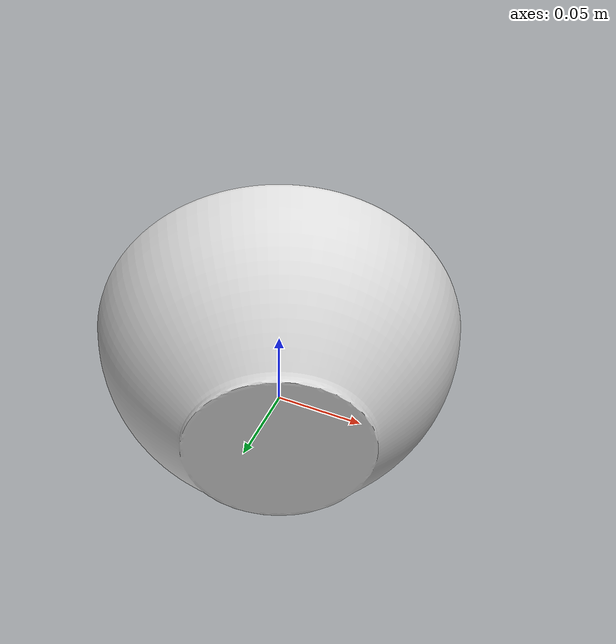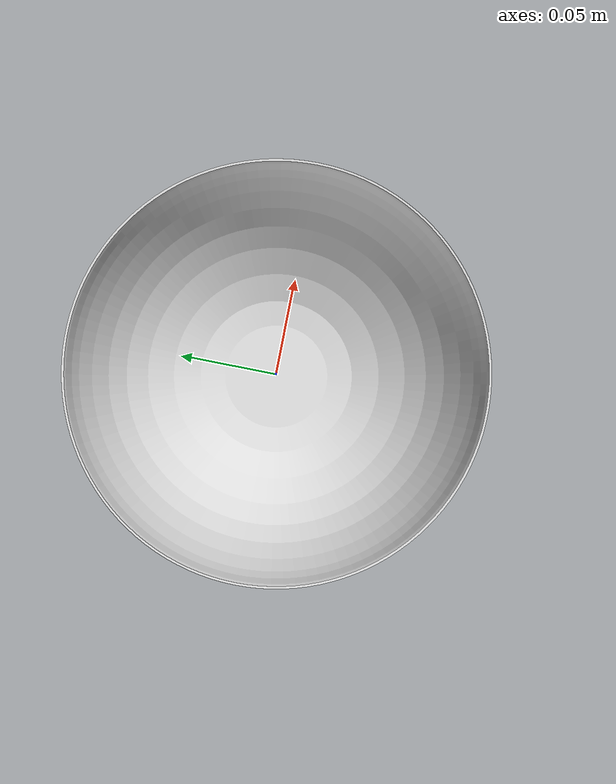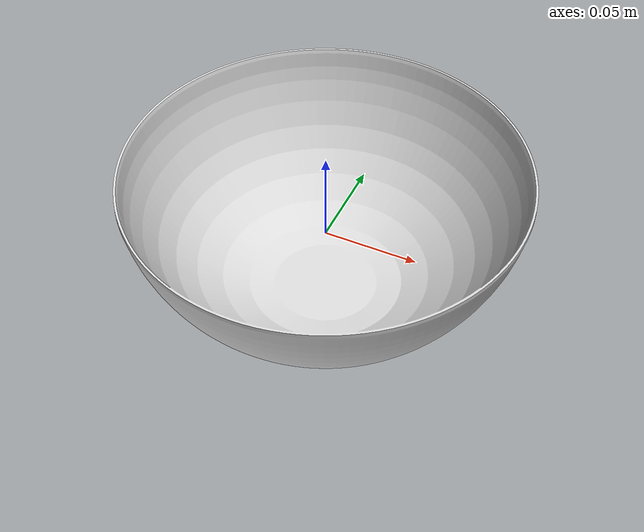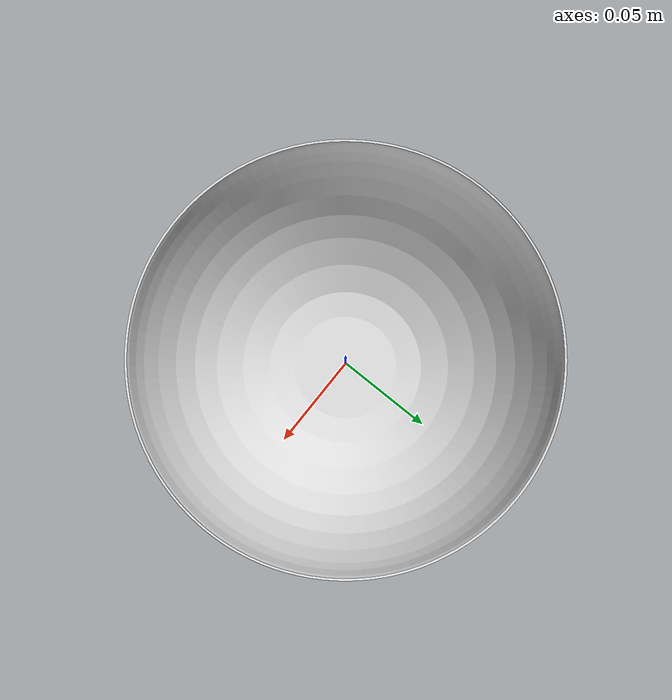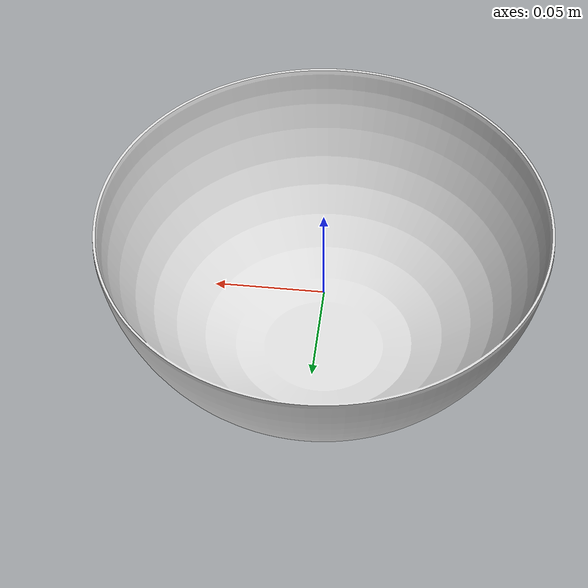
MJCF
<?xml version="1.0" ?>
<mujoco model="medium_bowl">
	<compiler meshdir="medium_bowl/meshes" texturedir="medium_bowl/textures" angle="radian" autolimits="true" balanceinertia="true" boundmass="0.000001" boundinertia="0.000001"/>
	<default>
		<default class="visual">
			<geom contype="0" conaffinity="0"/>
		</default>
		<default class="collision">
			<geom rgba="1.0 0.0 0.0 0.0"/>
		</default>
	</default>
	<asset>
		<mesh name="BowlMediumSize" file="stl/BowlMediumSize.stl" scale="1.0 1.0 1.0"/>
		<mesh name="BowlMediumSize_001" file="stl/BowlMediumSize_001.stl" scale="1.0 1.0 1.0"/>
		<mesh name="BowlMediumSize_002" file="stl/BowlMediumSize_002.stl" scale="1.0 1.0 1.0"/>
		<mesh name="BowlMediumSize_003" file="stl/BowlMediumSize_003.stl" scale="1.0 1.0 1.0"/>
		<mesh name="BowlMediumSize_004" file="stl/BowlMediumSize_004.stl" scale="1.0 1.0 1.0"/>
		<mesh name="BowlMediumSize_005" file="stl/BowlMediumSize_005.stl" scale="1.0 1.0 1.0"/>
		<mesh name="BowlMediumSize_006" file="stl/BowlMediumSize_006.stl" scale="1.0 1.0 1.0"/>
		<mesh name="BowlMediumSize_007" file="stl/BowlMediumSize_007.stl" scale="1.0 1.0 1.0"/>
		<mesh name="BowlMediumSize_008" file="stl/BowlMediumSize_008.stl" scale="1.0 1.0 1.0"/>
		<mesh name="BowlMediumSize_009" file="stl/BowlMediumSize_009.stl" scale="1.0 1.0 1.0"/>
		<mesh name="BowlMediumSize_010" file="stl/BowlMediumSize_010.stl" scale="1.0 1.0 1.0"/>
		<mesh name="BowlMediumSize_011" file="stl/BowlMediumSize_011.stl" scale="1.0 1.0 1.0"/>
		<mesh name="BowlMediumSize_012" file="stl/BowlMediumSize_012.stl" scale="1.0 1.0 1.0"/>
		<mesh name="BowlMediumSize_013" file="stl/BowlMediumSize_013.stl" scale="1.0 1.0 1.0"/>
		<mesh name="BowlMediumSize_014" file="stl/BowlMediumSize_014.stl" scale="1.0 1.0 1.0"/>
		<mesh name="BowlMediumSize_015" file="stl/BowlMediumSize_015.stl" scale="1.0 1.0 1.0"/>
		<mesh name="BowlMediumSize_016" file="stl/BowlMediumSize_016.stl" scale="1.0 1.0 1.0"/>
		<mesh name="BowlMediumSize_017" file="stl/BowlMediumSize_017.stl" scale="1.0 1.0 1.0"/>
		<mesh name="BowlMediumSize_018" file="stl/BowlMediumSize_018.stl" scale="1.0 1.0 1.0"/>
		<mesh name="BowlMediumSize_019" file="stl/BowlMediumSize_019.stl" scale="1.0 1.0 1.0"/>
		<mesh name="BowlMediumSize_020" file="stl/BowlMediumSize_020.stl" scale="1.0 1.0 1.0"/>
		<mesh name="BowlMediumSize_021" file="stl/BowlMediumSize_021.stl" scale="1.0 1.0 1.0"/>
		<mesh name="BowlMediumSize_022" file="stl/BowlMediumSize_022.stl" scale="1.0 1.0 1.0"/>
		<mesh name="BowlMediumSize_023" file="stl/BowlMediumSize_023.stl" scale="1.0 1.0 1.0"/>
		<mesh name="BowlMediumSize_024" file="stl/BowlMediumSize_024.stl" scale="1.0 1.0 1.0"/>
		<mesh name="BowlMediumSize_025" file="stl/BowlMediumSize_025.stl" scale="1.0 1.0 1.0"/>
		<mesh name="BowlMediumSize_026" file="stl/BowlMediumSize_026.stl" scale="1.0 1.0 1.0"/>
		<mesh name="BowlMediumSize_027" file="stl/BowlMediumSize_027.stl" scale="1.0 1.0 1.0"/>
		<mesh name="BowlMediumSize_028" file="stl/BowlMediumSize_028.stl" scale="1.0 1.0 1.0"/>
		<mesh name="BowlMediumSize_029" file="stl/BowlMediumSize_029.stl" scale="1.0 1.0 1.0"/>
		<mesh name="BowlMediumSize_030" file="stl/BowlMediumSize_030.stl" scale="1.0 1.0 1.0"/>
		<mesh name="BowlMediumSize_031" file="stl/BowlMediumSize_031.stl" scale="1.0 1.0 1.0"/>
		<mesh name="BowlMediumSize_032" file="stl/BowlMediumSize_032.stl" scale="1.0 1.0 1.0"/>
		<mesh name="BowlMediumSize_033" file="stl/BowlMediumSize_033.stl" scale="1.0 1.0 1.0"/>
		<mesh name="BowlMediumSize_034" file="stl/BowlMediumSize_034.stl" scale="1.0 1.0 1.0"/>
		<mesh name="BowlMediumSize_035" file="stl/BowlMediumSize_035.stl" scale="1.0 1.0 1.0"/>
		<mesh name="BowlMediumSize_036" file="stl/BowlMediumSize_036.stl" scale="1.0 1.0 1.0"/>
		<mesh name="BowlMediumSize_037" file="stl/BowlMediumSize_037.stl" scale="1.0 1.0 1.0"/>
		<mesh name="BowlMediumSize_038" file="stl/BowlMediumSize_038.stl" scale="1.0 1.0 1.0"/>
		<mesh name="BowlMediumSize_039" file="stl/BowlMediumSize_039.stl" scale="1.0 1.0 1.0"/>
		<mesh name="BowlMediumSize_040" file="stl/BowlMediumSize_040.stl" scale="1.0 1.0 1.0"/>
		<mesh name="BowlMediumSize_041" file="stl/BowlMediumSize_041.stl" scale="1.0 1.0 1.0"/>
		<mesh name="BowlMediumSize_042" file="stl/BowlMediumSize_042.stl" scale="1.0 1.0 1.0"/>
		<mesh name="BowlMediumSize_043" file="stl/BowlMediumSize_043.stl" scale="1.0 1.0 1.0"/>
		<mesh name="BowlMediumSize_044" file="stl/BowlMediumSize_044.stl" scale="1.0 1.0 1.0"/>
		<mesh name="BowlMediumSize_045" file="stl/BowlMediumSize_045.stl" scale="1.0 1.0 1.0"/>
		<material name="M_BowlMediumSize" rgba="0.8435999751091003 0.8435999751091003 0.8435999751091003 1.0" emission="0.0"/>
	</asset>
	<worldbody>
		<body name="medium_bowl" pos="0.0 0.0 0.0" quat="1.0 0.0 0.0 0.0">
			<inertial mass="0.4966089427471161" pos="-6.860583567913636e-08 1.1251937337419804e-07 -0.011291319504380226" quat="-0.7019752264022827 -2.2208456584849046e-07 -5.1159736358386e-07 0.7122013568878174" diaginertia="0.0017319830367341638 0.0017319886246696115 0.002707346109673381"/>
			<geom name="BowlMediumSize" type="mesh" pos="0.0 0.0 0.0" quat="1.0 0.0 0.0 0.0" mesh="BowlMediumSize" material="M_BowlMediumSize" class="visual"/>
			<geom name="BowlMediumSize_001" type="mesh" pos="0.0 0.0 0.0" quat="1.0 0.0 0.0 0.0" mesh="BowlMediumSize_001" class="collision"/>
			<geom name="BowlMediumSize_002" type="mesh" pos="0.0 0.0 0.0" quat="1.0 0.0 0.0 0.0" mesh="BowlMediumSize_002" class="collision"/>
			<geom name="BowlMediumSize_003" type="mesh" pos="0.0 0.0 0.0" quat="1.0 0.0 0.0 0.0" mesh="BowlMediumSize_003" class="collision"/>
			<geom name="BowlMediumSize_004" type="mesh" pos="0.0 0.0 0.0" quat="1.0 0.0 0.0 0.0" mesh="BowlMediumSize_004" class="collision"/>
			<geom name="BowlMediumSize_005" type="mesh" pos="0.0 0.0 0.0" quat="1.0 0.0 0.0 0.0" mesh="BowlMediumSize_005" class="collision"/>
			<geom name="BowlMediumSize_006" type="mesh" pos="0.0 0.0 0.0" quat="1.0 0.0 0.0 0.0" mesh="BowlMediumSize_006" class="collision"/>
			<geom name="BowlMediumSize_007" type="mesh" pos="0.0 0.0 0.0" quat="1.0 0.0 0.0 0.0" mesh="BowlMediumSize_007" class="collision"/>
			<geom name="BowlMediumSize_008" type="mesh" pos="0.0 0.0 0.0" quat="1.0 0.0 0.0 0.0" mesh="BowlMediumSize_008" class="collision"/>
			<geom name="BowlMediumSize_009" type="mesh" pos="0.0 0.0 0.0" quat="1.0 0.0 0.0 0.0" mesh="BowlMediumSize_009" class="collision"/>
			<geom name="BowlMediumSize_010" type="mesh" pos="0.0 0.0 0.0" quat="1.0 0.0 0.0 0.0" mesh="BowlMediumSize_010" class="collision"/>
			<geom name="BowlMediumSize_011" type="mesh" pos="0.0 0.0 0.0" quat="1.0 0.0 0.0 0.0" mesh="BowlMediumSize_011" class="collision"/>
			<geom name="BowlMediumSize_012" type="mesh" pos="0.0 0.0 0.0" quat="1.0 0.0 0.0 0.0" mesh="BowlMediumSize_012" class="collision"/>
			<geom name="BowlMediumSize_013" type="mesh" pos="0.0 0.0 0.0" quat="1.0 0.0 0.0 0.0" mesh="BowlMediumSize_013" class="collision"/>
			<geom name="BowlMediumSize_014" type="mesh" pos="0.0 0.0 0.0" quat="1.0 0.0 0.0 0.0" mesh="BowlMediumSize_014" class="collision"/>
			<geom name="BowlMediumSize_015" type="mesh" pos="0.0 0.0 0.0" quat="1.0 0.0 0.0 0.0" mesh="BowlMediumSize_015" class="collision"/>
			<geom name="BowlMediumSize_016" type="mesh" pos="0.0 0.0 0.0" quat="1.0 0.0 0.0 0.0" mesh="BowlMediumSize_016" class="collision"/>
			<geom name="BowlMediumSize_017" type="mesh" pos="0.0 0.0 0.0" quat="1.0 0.0 0.0 0.0" mesh="BowlMediumSize_017" class="collision"/>
			<geom name="BowlMediumSize_018" type="mesh" pos="0.0 0.0 0.0" quat="1.0 0.0 0.0 0.0" mesh="BowlMediumSize_018" class="collision"/>
			<geom name="BowlMediumSize_019" type="mesh" pos="0.0 0.0 0.0" quat="1.0 0.0 0.0 0.0" mesh="BowlMediumSize_019" class="collision"/>
			<geom name="BowlMediumSize_020" type="mesh" pos="0.0 0.0 0.0" quat="1.0 0.0 0.0 0.0" mesh="BowlMediumSize_020" class="collision"/>
			<geom name="BowlMediumSize_021" type="mesh" pos="0.0 0.0 0.0" quat="1.0 0.0 0.0 0.0" mesh="BowlMediumSize_021" class="collision"/>
			<geom name="BowlMediumSize_022" type="mesh" pos="0.0 0.0 0.0" quat="1.0 0.0 0.0 0.0" mesh="BowlMediumSize_022" class="collision"/>
			<geom name="BowlMediumSize_023" type="mesh" pos="0.0 0.0 0.0" quat="1.0 0.0 0.0 0.0" mesh="BowlMediumSize_023" class="collision"/>
			<geom name="BowlMediumSize_024" type="mesh" pos="0.0 0.0 0.0" quat="1.0 0.0 0.0 0.0" mesh="BowlMediumSize_024" class="collision"/>
			<geom name="BowlMediumSize_025" type="mesh" pos="0.0 0.0 0.0" quat="1.0 0.0 0.0 0.0" mesh="BowlMediumSize_025" class="collision"/>
			<geom name="BowlMediumSize_026" type="mesh" pos="0.0 0.0 0.0" quat="1.0 0.0 0.0 0.0" mesh="BowlMediumSize_026" class="collision"/>
			<geom name="BowlMediumSize_027" type="mesh" pos="0.0 0.0 0.0" quat="1.0 0.0 0.0 0.0" mesh="BowlMediumSize_027" class="collision"/>
			<geom name="BowlMediumSize_028" type="mesh" pos="0.0 0.0 0.0" quat="1.0 0.0 0.0 0.0" mesh="BowlMediumSize_028" class="collision"/>
			<geom name="BowlMediumSize_029" type="mesh" pos="0.0 0.0 0.0" quat="1.0 0.0 0.0 0.0" mesh="BowlMediumSize_029" class="collision"/>
			<geom name="BowlMediumSize_030" type="mesh" pos="0.0 0.0 0.0" quat="1.0 0.0 0.0 0.0" mesh="BowlMediumSize_030" class="collision"/>
			<geom name="BowlMediumSize_031" type="mesh" pos="0.0 0.0 0.0" quat="1.0 0.0 0.0 0.0" mesh="BowlMediumSize_031" class="collision"/>
			<geom name="BowlMediumSize_032" type="mesh" pos="0.0 0.0 0.0" quat="1.0 0.0 0.0 0.0" mesh="BowlMediumSize_032" class="collision"/>
			<geom name="BowlMediumSize_033" type="mesh" pos="0.0 0.0 0.0" quat="1.0 0.0 0.0 0.0" mesh="BowlMediumSize_033" class="collision"/>
			<geom name="BowlMediumSize_034" type="mesh" pos="0.0 0.0 0.0" quat="1.0 0.0 0.0 0.0" mesh="BowlMediumSize_034" class="collision"/>
			<geom name="BowlMediumSize_035" type="mesh" pos="0.0 0.0 0.0" quat="1.0 0.0 0.0 0.0" mesh="BowlMediumSize_035" class="collision"/>
			<geom name="BowlMediumSize_036" type="mesh" pos="0.0 0.0 0.0" quat="1.0 0.0 0.0 0.0" mesh="BowlMediumSize_036" class="collision"/>
			<geom name="BowlMediumSize_037" type="mesh" pos="0.0 0.0 0.0" quat="1.0 0.0 0.0 0.0" mesh="BowlMediumSize_037" class="collision"/>
			<geom name="BowlMediumSize_038" type="mesh" pos="0.0 0.0 0.0" quat="1.0 0.0 0.0 0.0" mesh="BowlMediumSize_038" class="collision"/>
			<geom name="BowlMediumSize_039" type="mesh" pos="0.0 0.0 0.0" quat="1.0 0.0 0.0 0.0" mesh="BowlMediumSize_039" class="collision"/>
			<geom name="BowlMediumSize_040" type="mesh" pos="0.0 0.0 0.0" quat="1.0 0.0 0.0 0.0" mesh="BowlMediumSize_040" class="collision"/>
			<geom name="BowlMediumSize_041" type="mesh" pos="0.0 0.0 0.0" quat="1.0 0.0 0.0 0.0" mesh="BowlMediumSize_041" class="collision"/>
			<geom name="BowlMediumSize_042" type="mesh" pos="0.0 0.0 0.0" quat="1.0 0.0 0.0 0.0" mesh="BowlMediumSize_042" class="collision"/>
			<geom name="BowlMediumSize_043" type="mesh" pos="0.0 0.0 0.0" quat="1.0 0.0 0.0 0.0" mesh="BowlMediumSize_043" class="collision"/>
			<geom name="BowlMediumSize_044" type="mesh" pos="0.0 0.0 0.0" quat="1.0 0.0 0.0 0.0" mesh="BowlMediumSize_044" class="collision"/>
			<geom name="BowlMediumSize_045" type="mesh" pos="0.0 0.0 0.0" quat="1.0 0.0 0.0 0.0" mesh="BowlMediumSize_045" class="collision"/>
		</body>
	</worldbody>
	<equality/>
</mujoco>
